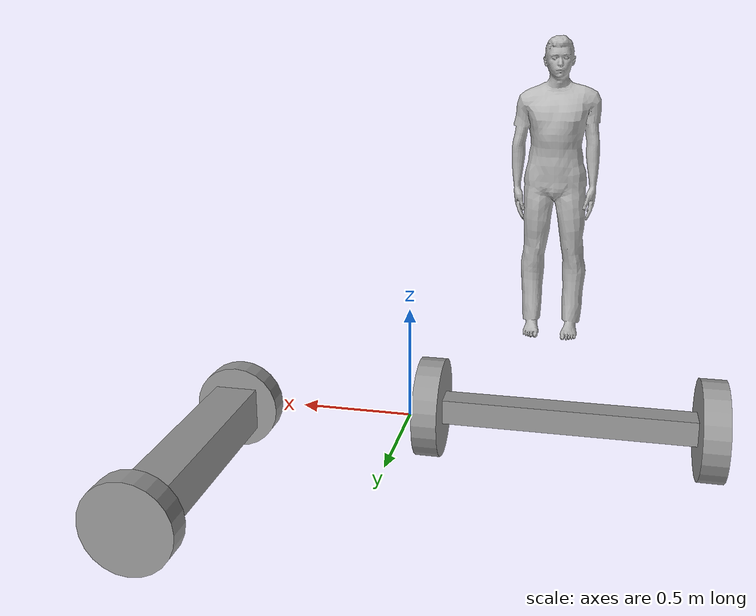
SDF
<?xml version='1.0'?>
<sdf version='1.6'>
  <model name='myrobot'>
    <link name='link_1'>
      <pose frame=''>0.883581 0.384896 -0.1 0 -0 0</pose>
      <inertial>
        <mass>1</mass>
        <inertia>
          <ixx>0.166667</ixx>
          <ixy>0</ixy>
          <ixz>0</ixz>
          <iyy>0.166667</iyy>
          <iyz>0</iyz>
          <izz>0.166667</izz>
        </inertia>
        <pose frame=''>0 0 0 0 -0 0</pose>
      </inertial>
      <gravity>1</gravity>
      <self_collide>0</self_collide>
      <kinematic>0</kinematic>
      <visual name='visual'>
        <pose frame=''>0 0 0 0 -0 0</pose>
        <geometry>
          <box>
            <size>0.2 1 0.2</size>
          </box>
        </geometry>
        <material>
          <lighting>1</lighting>
          <script>
            <uri>file://media/materials/scripts/gazebo.material</uri>
            <name>Gazebo/Grey</name>
          </script>
          <shader type='pixel'>
            <normal_map>__default__</normal_map>
          </shader>
          <ambient>0.3 0.3 0.3 1</ambient>
          <diffuse>0.7 0.7 0.7 1</diffuse>
          <specular>0.01 0.01 0.01 1</specular>
          <emissive>0 0 0 1</emissive>
        </material>
        <transparency>0</transparency>
        <cast_shadows>1</cast_shadows>
      </visual>
      <collision name='collision'>
        <laser_retro>0</laser_retro>
        <max_contacts>10</max_contacts>
        <pose frame=''>0 0 0 0 -0 0</pose>
        <geometry>
          <box>
            <size>0.2 1 0.2</size>
          </box>
        </geometry>
        <surface>
          <friction>
            <ode>
              <mu>1</mu>
              <mu2>1</mu2>
              <fdir1>0 0 0</fdir1>
              <slip1>0</slip1>
              <slip2>0</slip2>
            </ode>
            <torsional>
              <coefficient>1</coefficient>
              <patch_radius>0</patch_radius>
              <surface_radius>0</surface_radius>
              <use_patch_radius>1</use_patch_radius>
              <ode>
                <slip>0</slip>
              </ode>
            </torsional>
          </friction>
          <bounce>
            <restitution_coefficient>0</restitution_coefficient>
            <threshold>1e+06</threshold>
          </bounce>
          <contact>
            <collide_without_contact>0</collide_without_contact>
            <collide_without_contact_bitmask>1</collide_without_contact_bitmask>
            <collide_bitmask>1</collide_bitmask>
            <ode>
              <soft_cfm>0</soft_cfm>
              <soft_erp>0.2</soft_erp>
              <kp>1e+13</kp>
              <kd>1</kd>
              <max_vel>0.01</max_vel>
              <min_depth>0</min_depth>
            </ode>
            <bullet>
              <split_impulse>1</split_impulse>
              <split_impulse_penetration_threshold>-0.01</split_impulse_penetration_threshold>
              <soft_cfm>0</soft_cfm>
              <soft_erp>0.2</soft_erp>
              <kp>1e+13</kp>
              <kd>1</kd>
            </bullet>
          </contact>
        </surface>
      </collision>
    </link>
    <link name='link_2'>
      <pose frame=''>0.883581 -0.16409 -0.1 1.5707 -0 0</pose>
      <inertial>
        <mass>1</mass>
        <inertia>
          <ixx>0.145833</ixx>
          <ixy>0</ixy>
          <ixz>0</ixz>
          <iyy>0.145833</iyy>
          <iyz>0</iyz>
          <izz>0.125</izz>
        </inertia>
        <pose frame=''>0 0 0 0 -0 0</pose>
      </inertial>
      <gravity>1</gravity>
      <self_collide>0</self_collide>
      <kinematic>0</kinematic>
      <visual name='visual'>
        <pose frame=''>0 0 0 0 -0 0</pose>
        <geometry>
          <cylinder>
            <radius>0.2</radius>
            <length>0.1</length>
          </cylinder>
        </geometry>
        <material>
          <lighting>1</lighting>
          <script>
            <uri>file://media/materials/scripts/gazebo.material</uri>
            <name>Gazebo/Grey</name>
          </script>
          <shader type='pixel'>
            <normal_map>__default__</normal_map>
          </shader>
          <ambient>0.3 0.3 0.3 1</ambient>
          <diffuse>0.7 0.7 0.7 1</diffuse>
          <specular>0.01 0.01 0.01 1</specular>
          <emissive>0 0 0 1</emissive>
        </material>
        <transparency>0</transparency>
        <cast_shadows>1</cast_shadows>
      </visual>
      <collision name='collision'>
        <laser_retro>0</laser_retro>
        <max_contacts>10</max_contacts>
        <pose frame=''>0 0 0 0 -0 0</pose>
        <geometry>
          <cylinder>
            <radius>0.2</radius>
            <length>0.1</length>
          </cylinder>
        </geometry>
        <surface>
          <friction>
            <ode>
              <mu>1</mu>
              <mu2>1</mu2>
              <fdir1>0 0 0</fdir1>
              <slip1>0</slip1>
              <slip2>0</slip2>
            </ode>
            <torsional>
              <coefficient>1</coefficient>
              <patch_radius>0</patch_radius>
              <surface_radius>0</surface_radius>
              <use_patch_radius>1</use_patch_radius>
              <ode>
                <slip>0</slip>
              </ode>
            </torsional>
          </friction>
          <bounce>
            <restitution_coefficient>0</restitution_coefficient>
            <threshold>1e+06</threshold>
          </bounce>
          <contact>
            <collide_without_contact>0</collide_without_contact>
            <collide_without_contact_bitmask>1</collide_without_contact_bitmask>
            <collide_bitmask>1</collide_bitmask>
            <ode>
              <soft_cfm>0</soft_cfm>
              <soft_erp>0.2</soft_erp>
              <kp>1e+13</kp>
              <kd>1</kd>
              <max_vel>0.01</max_vel>
              <min_depth>0</min_depth>
            </ode>
            <bullet>
              <split_impulse>1</split_impulse>
              <split_impulse_penetration_threshold>-0.01</split_impulse_penetration_threshold>
              <soft_cfm>0</soft_cfm>
              <soft_erp>0.2</soft_erp>
              <kp>1e+13</kp>
              <kd>1</kd>
            </bullet>
          </contact>
        </surface>
      </collision>
    </link>
    <link name='link_2_clone'>
      <pose frame=''>0.883581 0.936694 -0.1 1.5707 -0 0</pose>
      <inertial>
        <mass>1</mass>
        <inertia>
          <ixx>0.145833</ixx>
          <ixy>0</ixy>
          <ixz>0</ixz>
          <iyy>0.145833</iyy>
          <iyz>0</iyz>
          <izz>0.125</izz>
        </inertia>
        <pose frame=''>0 0 0 0 -0 0</pose>
      </inertial>
      <self_collide>0</self_collide>
      <kinematic>0</kinematic>
      <visual name='visual'>
        <pose frame=''>0 0 0 0 -0 0</pose>
        <geometry>
          <cylinder>
            <radius>0.2</radius>
            <length>0.1</length>
          </cylinder>
        </geometry>
        <material>
          <lighting>1</lighting>
          <script>
            <uri>file://media/materials/scripts/gazebo.material</uri>
            <name>Gazebo/Grey</name>
          </script>
          <shader type='pixel'>
            <normal_map>__default__</normal_map>
          </shader>
          <ambient>0.3 0.3 0.3 1</ambient>
          <diffuse>0.7 0.7 0.7 1</diffuse>
          <specular>0.01 0.01 0.01 1</specular>
          <emissive>0 0 0 1</emissive>
        </material>
        <transparency>0</transparency>
        <cast_shadows>1</cast_shadows>
      </visual>
      <collision name='collision'>
        <laser_retro>0</laser_retro>
        <max_contacts>10</max_contacts>
        <pose frame=''>0 0 0 0 -0 0</pose>
        <geometry>
          <cylinder>
            <radius>0.2</radius>
            <length>0.1</length>
          </cylinder>
        </geometry>
        <surface>
          <friction>
            <ode>
              <mu>1</mu>
              <mu2>1</mu2>
              <fdir1>0 0 0</fdir1>
              <slip1>0</slip1>
              <slip2>0</slip2>
            </ode>
            <torsional>
              <coefficient>1</coefficient>
              <patch_radius>0</patch_radius>
              <surface_radius>0</surface_radius>
              <use_patch_radius>1</use_patch_radius>
              <ode>
                <slip>0</slip>
              </ode>
            </torsional>
          </friction>
          <bounce>
            <restitution_coefficient>0</restitution_coefficient>
            <threshold>1e+06</threshold>
          </bounce>
          <contact>
            <collide_without_contact>0</collide_without_contact>
            <collide_without_contact_bitmask>1</collide_without_contact_bitmask>
            <collide_bitmask>1</collide_bitmask>
            <ode>
              <soft_cfm>0</soft_cfm>
              <soft_erp>0.2</soft_erp>
              <kp>1e+13</kp>
              <kd>1</kd>
              <max_vel>0.01</max_vel>
              <min_depth>0</min_depth>
            </ode>
            <bullet>
              <split_impulse>1</split_impulse>
              <split_impulse_penetration_threshold>-0.01</split_impulse_penetration_threshold>
              <soft_cfm>0</soft_cfm>
              <soft_erp>0.2</soft_erp>
              <kp>1e+13</kp>
              <kd>1</kd>
            </bullet>
          </contact>
        </surface>
      </collision>
    </link>
    <link name='link_3'>
      <pose frame=''>-0.709219 0.318575 0.2 0 -0 0</pose>
      <inertial>
        <mass>1</mass>
        <inertia>
          <ixx>0.166667</ixx>
          <ixy>0</ixy>
          <ixz>0</ixz>
          <iyy>0.166667</iyy>
          <iyz>0</iyz>
          <izz>0.166667</izz>
        </inertia>
        <pose frame=''>0 0 0 0 -0 0</pose>
      </inertial>
      <gravity>1</gravity>
      <self_collide>0</self_collide>
      <kinematic>0</kinematic>
      <visual name='visual'>
        <pose frame=''>0 0 0 0 -0 0</pose>
        <geometry>
          <box>
            <size>1 0.1 0.1</size>
          </box>
        </geometry>
        <material>
          <lighting>1</lighting>
          <script>
            <uri>file://media/materials/scripts/gazebo.material</uri>
            <name>Gazebo/Grey</name>
          </script>
          <shader type='pixel'>
            <normal_map>__default__</normal_map>
          </shader>
          <ambient>0.3 0.3 0.3 1</ambient>
          <diffuse>0.7 0.7 0.7 1</diffuse>
          <specular>0.01 0.01 0.01 1</specular>
          <emissive>0 0 0 1</emissive>
        </material>
        <transparency>0</transparency>
        <cast_shadows>1</cast_shadows>
      </visual>
      <collision name='collision'>
        <laser_retro>0</laser_retro>
        <max_contacts>10</max_contacts>
        <pose frame=''>0 0 0 0 -0 0</pose>
        <geometry>
          <box>
            <size>1 0.1 0.1</size>
          </box>
        </geometry>
        <surface>
          <friction>
            <ode>
              <mu>1</mu>
              <mu2>1</mu2>
              <fdir1>0 0 0</fdir1>
              <slip1>0</slip1>
              <slip2>0</slip2>
            </ode>
            <torsional>
              <coefficient>1</coefficient>
              <patch_radius>0</patch_radius>
              <surface_radius>0</surface_radius>
              <use_patch_radius>1</use_patch_radius>
              <ode>
                <slip>0</slip>
              </ode>
            </torsional>
          </friction>
          <bounce>
            <restitution_coefficient>0</restitution_coefficient>
            <threshold>1e+06</threshold>
          </bounce>
          <contact>
            <collide_without_contact>0</collide_without_contact>
            <collide_without_contact_bitmask>1</collide_without_contact_bitmask>
            <collide_bitmask>1</collide_bitmask>
            <ode>
              <soft_cfm>0</soft_cfm>
              <soft_erp>0.2</soft_erp>
              <kp>1e+13</kp>
              <kd>1</kd>
              <max_vel>0.01</max_vel>
              <min_depth>0</min_depth>
            </ode>
            <bullet>
              <split_impulse>1</split_impulse>
              <split_impulse_penetration_threshold>-0.01</split_impulse_penetration_threshold>
              <soft_cfm>0</soft_cfm>
              <soft_erp>0.2</soft_erp>
              <kp>1e+13</kp>
              <kd>1</kd>
            </bullet>
          </contact>
        </surface>
      </collision>
    </link>
    <link name='link_4'>
      <pose frame=''>-0.160356 0.318575 0.2 0 1.5707 0</pose>
      <inertial>
        <mass>1</mass>
        <inertia>
          <ixx>0.145833</ixx>
          <ixy>0</ixy>
          <ixz>0</ixz>
          <iyy>0.145833</iyy>
          <iyz>0</iyz>
          <izz>0.125</izz>
        </inertia>
        <pose frame=''>0 0 0 0 -0 0</pose>
      </inertial>
      <gravity>1</gravity>
      <self_collide>0</self_collide>
      <kinematic>0</kinematic>
      <visual name='visual'>
        <pose frame=''>0 0 0 0 -0 0</pose>
        <geometry>
          <cylinder>
            <radius>0.2</radius>
            <length>0.1</length>
          </cylinder>
        </geometry>
        <material>
          <lighting>1</lighting>
          <script>
            <uri>file://media/materials/scripts/gazebo.material</uri>
            <name>Gazebo/Grey</name>
          </script>
          <shader type='pixel'>
            <normal_map>__default__</normal_map>
          </shader>
          <ambient>0.3 0.3 0.3 1</ambient>
          <diffuse>0.7 0.7 0.7 1</diffuse>
          <specular>0.01 0.01 0.01 1</specular>
          <emissive>0 0 0 1</emissive>
        </material>
        <transparency>0</transparency>
        <cast_shadows>1</cast_shadows>
      </visual>
      <collision name='collision'>
        <laser_retro>0</laser_retro>
        <max_contacts>10</max_contacts>
        <pose frame=''>0 0 0 0 -0 0</pose>
        <geometry>
          <cylinder>
            <radius>0.2</radius>
            <length>0.1</length>
          </cylinder>
        </geometry>
        <surface>
          <friction>
            <ode>
              <mu>1</mu>
              <mu2>1</mu2>
              <fdir1>0 0 0</fdir1>
              <slip1>0</slip1>
              <slip2>0</slip2>
            </ode>
            <torsional>
              <coefficient>1</coefficient>
              <patch_radius>0</patch_radius>
              <surface_radius>0</surface_radius>
              <use_patch_radius>1</use_patch_radius>
              <ode>
                <slip>0</slip>
              </ode>
            </torsional>
          </friction>
          <bounce>
            <restitution_coefficient>0</restitution_coefficient>
            <threshold>1e+06</threshold>
          </bounce>
          <contact>
            <collide_without_contact>0</collide_without_contact>
            <collide_without_contact_bitmask>1</collide_without_contact_bitmask>
            <collide_bitmask>1</collide_bitmask>
            <ode>
              <soft_cfm>0</soft_cfm>
              <soft_erp>0.2</soft_erp>
              <kp>1e+13</kp>
              <kd>1</kd>
              <max_vel>0.01</max_vel>
              <min_depth>0</min_depth>
            </ode>
            <bullet>
              <split_impulse>1</split_impulse>
              <split_impulse_penetration_threshold>-0.01</split_impulse_penetration_threshold>
              <soft_cfm>0</soft_cfm>
              <soft_erp>0.2</soft_erp>
              <kp>1e+13</kp>
              <kd>1</kd>
            </bullet>
          </contact>
        </surface>
      </collision>
    </link>
    <link name='link_4_clone'>
      <pose frame=''>-1.25922 0.318575 0.2 0 1.5707 0</pose>
      <inertial>
        <mass>1</mass>
        <inertia>
          <ixx>0.145833</ixx>
          <ixy>0</ixy>
          <ixz>0</ixz>
          <iyy>0.145833</iyy>
          <iyz>0</iyz>
          <izz>0.125</izz>
        </inertia>
        <pose frame=''>0 0 0 0 -0 0</pose>
      </inertial>
      <self_collide>0</self_collide>
      <kinematic>0</kinematic>
      <visual name='visual'>
        <pose frame=''>0 0 0 0 -0 0</pose>
        <geometry>
          <cylinder>
            <radius>0.2</radius>
            <length>0.1</length>
          </cylinder>
        </geometry>
        <material>
          <lighting>1</lighting>
          <script>
            <uri>file://media/materials/scripts/gazebo.material</uri>
            <name>Gazebo/Grey</name>
          </script>
          <shader type='pixel'>
            <normal_map>__default__</normal_map>
          </shader>
          <ambient>0.3 0.3 0.3 1</ambient>
          <diffuse>0.7 0.7 0.7 1</diffuse>
          <specular>0.01 0.01 0.01 1</specular>
          <emissive>0 0 0 1</emissive>
        </material>
        <transparency>0</transparency>
        <cast_shadows>1</cast_shadows>
      </visual>
      <collision name='collision'>
        <laser_retro>0</laser_retro>
        <max_contacts>10</max_contacts>
        <pose frame=''>0 0 0 0 -0 0</pose>
        <geometry>
          <cylinder>
            <radius>0.2</radius>
            <length>0.1</length>
          </cylinder>
        </geometry>
        <surface>
          <friction>
            <ode>
              <mu>1</mu>
              <mu2>1</mu2>
              <fdir1>0 0 0</fdir1>
              <slip1>0</slip1>
              <slip2>0</slip2>
            </ode>
            <torsional>
              <coefficient>1</coefficient>
              <patch_radius>0</patch_radius>
              <surface_radius>0</surface_radius>
              <use_patch_radius>1</use_patch_radius>
              <ode>
                <slip>0</slip>
              </ode>
            </torsional>
          </friction>
          <bounce>
            <restitution_coefficient>0</restitution_coefficient>
            <threshold>1e+06</threshold>
          </bounce>
          <contact>
            <collide_without_contact>0</collide_without_contact>
            <collide_without_contact_bitmask>1</collide_without_contact_bitmask>
            <collide_bitmask>1</collide_bitmask>
            <ode>
              <soft_cfm>0</soft_cfm>
              <soft_erp>0.2</soft_erp>
              <kp>1e+13</kp>
              <kd>1</kd>
              <max_vel>0.01</max_vel>
              <min_depth>0</min_depth>
            </ode>
            <bullet>
              <split_impulse>1</split_impulse>
              <split_impulse_penetration_threshold>-0.01</split_impulse_penetration_threshold>
              <soft_cfm>0</soft_cfm>
              <soft_erp>0.2</soft_erp>
              <kp>1e+13</kp>
              <kd>1</kd>
            </bullet>
          </contact>
        </surface>
      </collision>
    </link>
    <model name='person_standing'>
      <link name='link'>
        <inertial>
          <pose frame=''>0 -0.1 0.95 0 -0 0</pose>
          <mass>80</mass>
          <inertia>
            <ixx>24.88</ixx>
            <ixy>0</ixy>
            <ixz>0</ixz>
            <iyy>25.73</iyy>
            <iyz>0</iyz>
            <izz>2.48</izz>
          </inertia>
        </inertial>
        <collision name='bottom'>
          <pose frame=''>0 -0.1 0.01 0 -0 0</pose>
          <geometry>
            <box>
              <size>0.5 0.35 0.02</size>
            </box>
          </geometry>
        </collision>
        <collision name='person'>
          <pose frame=''>0 0 0.02 0.04 -0 0</pose>
          <geometry>
            <mesh>
              <uri>model://person_standing/meshes/standing.dae</uri>
            </mesh>
          </geometry>
        </collision>
        <visual name='visual'>
          <pose frame=''>0 0 0.02 0.04 -0 0</pose>
          <geometry>
            <mesh>
              <uri>model://person_standing/meshes/standing.dae</uri>
            </mesh>
          </geometry>
        </visual>
      </link>
      <pose frame=''>-0.521945 -2.11322 -0.3 0 -0 3.12696</pose>
    </model>
    <joint name='link_1_JOINT_3' type='revolute'>
      <parent>link_1</parent>
      <child>link_2</child>
      <pose frame=''>0 0 0 0 -0.01 0</pose>
      <axis>
        <xyz>0 0 1</xyz>
        <use_parent_model_frame>0</use_parent_model_frame>
        <limit>
          <lower>-1.79769e+308</lower>
          <upper>1.79769e+308</upper>
          <effort>-1</effort>
          <velocity>-1</velocity>
        </limit>
        <dynamics>
          <spring_reference>0</spring_reference>
          <spring_stiffness>0</spring_stiffness>
          <damping>0</damping>
        </dynamics>
      </axis>
      <physics>
        <ode>
          <limit>
            <cfm>0</cfm>
            <erp>0.2</erp>
          </limit>
          <suspension>
            <cfm>0</cfm>
            <erp>0.2</erp>
          </suspension>
        </ode>
      </physics>
    </joint>
    <joint name='link_1_JOINT_4' type='revolute'>
      <parent>link_1</parent>
      <child>link_2_clone</child>
      <pose frame=''>0 0 0 0 -0 0</pose>
      <axis>
        <xyz>0 0 1</xyz>
        <use_parent_model_frame>0</use_parent_model_frame>
        <limit>
          <lower>-1.79769e+308</lower>
          <upper>1.79769e+308</upper>
          <effort>-1</effort>
          <velocity>-1</velocity>
        </limit>
        <dynamics>
          <spring_reference>0</spring_reference>
          <spring_stiffness>0</spring_stiffness>
          <damping>0</damping>
        </dynamics>
      </axis>
      <physics>
        <ode>
          <limit>
            <cfm>0</cfm>
            <erp>0.2</erp>
          </limit>
          <suspension>
            <cfm>0</cfm>
            <erp>0.2</erp>
          </suspension>
        </ode>
      </physics>
    </joint>
    <joint name='link_3_JOINT_5' type='revolute'>
      <parent>link_3</parent>
      <child>link_4</child>
      <pose frame=''>0 0 0 0 -0 0</pose>
      <axis>
        <xyz>0 0 1</xyz>
        <use_parent_model_frame>0</use_parent_model_frame>
        <limit>
          <lower>-1.79769e+308</lower>
          <upper>1.79769e+308</upper>
          <effort>-1</effort>
          <velocity>-1</velocity>
        </limit>
        <dynamics>
          <spring_reference>0</spring_reference>
          <spring_stiffness>0</spring_stiffness>
          <damping>0</damping>
        </dynamics>
      </axis>
      <physics>
        <ode>
          <limit>
            <cfm>0</cfm>
            <erp>0.2</erp>
          </limit>
          <suspension>
            <cfm>0</cfm>
            <erp>0.2</erp>
          </suspension>
        </ode>
      </physics>
    </joint>
    <joint name='link_3_JOINT_8' type='revolute'>
      <parent>link_3</parent>
      <child>link_4_clone</child>
      <pose frame=''>0 0 0 0 -0 0</pose>
      <axis>
        <xyz>0 0 1</xyz>
        <use_parent_model_frame>0</use_parent_model_frame>
        <limit>
          <lower>-1.79769e+308</lower>
          <upper>1.79769e+308</upper>
          <effort>-1</effort>
          <velocity>-1</velocity>
        </limit>
        <dynamics>
          <spring_reference>0</spring_reference>
          <spring_stiffness>0</spring_stiffness>
          <damping>0</damping>
        </dynamics>
      </axis>
      <physics>
        <ode>
          <limit>
            <cfm>0</cfm>
            <erp>0.2</erp>
          </limit>
          <suspension>
            <cfm>0</cfm>
            <erp>0.2</erp>
          </suspension>
        </ode>
      </physics>
    </joint>
    <static>0</static>
    <allow_auto_disable>1</allow_auto_disable>
  </model>
</sdf>
